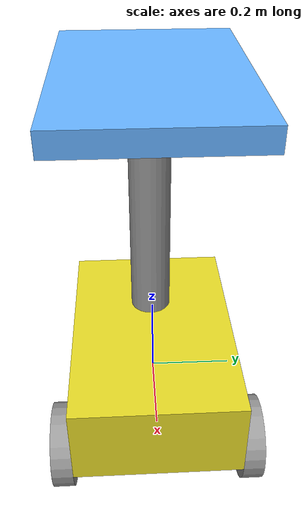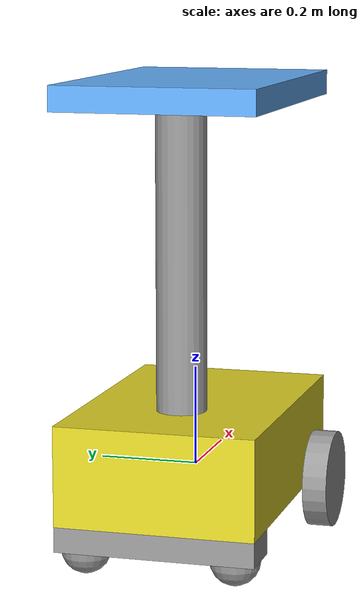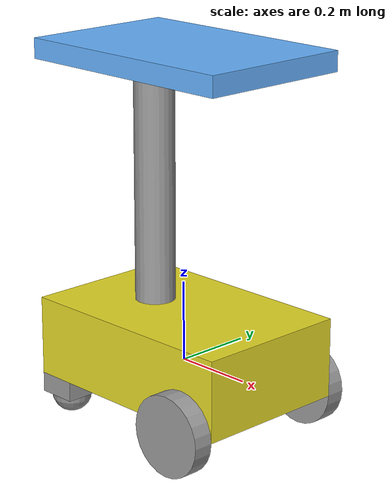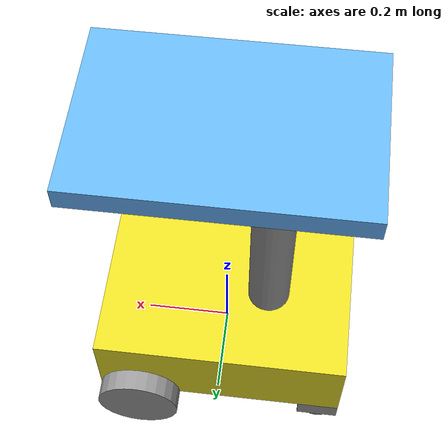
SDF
<?xml version='1.0'?>
<sdf version='1.6'>
  <model name='deliver_robot_5'>
    <link name='link_0_clone'>
      <pose frame=''>-0.002083 -0 0.033333 -0 -0 -0</pose>
      <inertial>
        <mass>1</mass>
        <inertia>
          <ixx>0.166667</ixx>
          <ixy>0</ixy>
          <ixz>0</ixz>
          <iyy>0.166667</iyy>
          <iyz>0</iyz>
          <izz>0.166667</izz>
        </inertia>
        <pose frame=''>0 0 0 0 -0 0</pose>
      </inertial>
      <self_collide>0</self_collide>
      <kinematic>0</kinematic>
      <visual name='visual'>
        <pose frame=''>0 0 0 0 -0 0</pose>
        <geometry>
          <box>
            <size>0.6 0.4 0.2</size>
          </box>
        </geometry>
        <material>
          <lighting>1</lighting>
          <script>
            <uri>file://media/materials/scripts/gazebo.material</uri>
            <name>Gazebo/Yellow</name>
          </script>
          <shader type='pixel'>
            <normal_map>__default__</normal_map>
          </shader>
          <ambient>0.2 0.8 1 1</ambient>
          <diffuse>0.4 0.7 1 1</diffuse>
          <specular>0.2 0.2 0.2 1</specular>
          <emissive>0 0 0 1</emissive>
        </material>
        <transparency>0</transparency>
        <cast_shadows>1</cast_shadows>
      </visual>
      <collision name='collision'>
        <laser_retro>0</laser_retro>
        <max_contacts>10</max_contacts>
        <pose frame=''>0 0 0 0 -0 0</pose>
        <geometry>
          <box>
            <size>0.6 0.4 0.2</size>
          </box>
        </geometry>
        <surface>
          <friction>
            <ode>
              <mu>1</mu>
              <mu2>1</mu2>
              <fdir1>0 0 0</fdir1>
              <slip1>0</slip1>
              <slip2>0</slip2>
            </ode>
            <torsional>
              <coefficient>1</coefficient>
              <patch_radius>0</patch_radius>
              <surface_radius>0</surface_radius>
              <use_patch_radius>1</use_patch_radius>
              <ode>
                <slip>0</slip>
              </ode>
            </torsional>
          </friction>
          <bounce>
            <restitution_coefficient>0</restitution_coefficient>
            <threshold>1e+06</threshold>
          </bounce>
          <contact>
            <collide_without_contact>0</collide_without_contact>
            <collide_without_contact_bitmask>1</collide_without_contact_bitmask>
            <collide_bitmask>1</collide_bitmask>
            <ode>
              <soft_cfm>0</soft_cfm>
              <soft_erp>0.2</soft_erp>
              <kp>1e+13</kp>
              <kd>1</kd>
              <max_vel>0.01</max_vel>
              <min_depth>0</min_depth>
            </ode>
            <bullet>
              <split_impulse>1</split_impulse>
              <split_impulse_penetration_threshold>-0.01</split_impulse_penetration_threshold>
              <soft_cfm>0</soft_cfm>
              <soft_erp>0.2</soft_erp>
              <kp>1e+13</kp>
              <kd>1</kd>
            </bullet>
          </contact>
        </surface>
      </collision>
    </link>
    <link name='link_1_clone'>
      <pose frame=''>0.197917 -0.22501 -0.066667 1.5707 -0 0</pose>
      <inertial>
        <mass>1</mass>
        <inertia>
          <ixx>0.145833</ixx>
          <ixy>0</ixy>
          <ixz>0</ixz>
          <iyy>0.145833</iyy>
          <iyz>0</iyz>
          <izz>0.125</izz>
        </inertia>
        <pose frame=''>0 0 0 0 -0 0</pose>
      </inertial>
      <self_collide>0</self_collide>
      <kinematic>0</kinematic>
      <visual name='visual'>
        <pose frame=''>0 0 0 0 -0 0</pose>
        <geometry>
          <cylinder>
            <radius>0.1</radius>
            <length>0.05</length>
          </cylinder>
        </geometry>
        <material>
          <lighting>1</lighting>
          <script>
            <uri>file://media/materials/scripts/gazebo.material</uri>
            <name>Gazebo/Grey</name>
          </script>
          <shader type='pixel'>
            <normal_map>__default__</normal_map>
          </shader>
          <ambient>0.3 0.3 0.3 1</ambient>
          <diffuse>0.7 0.7 0.7 1</diffuse>
          <specular>0.01 0.01 0.01 1</specular>
          <emissive>0 0 0 1</emissive>
        </material>
        <transparency>0</transparency>
        <cast_shadows>1</cast_shadows>
      </visual>
      <collision name='collision'>
        <laser_retro>0</laser_retro>
        <max_contacts>10</max_contacts>
        <pose frame=''>0 0 0 0 -0 0</pose>
        <geometry>
          <cylinder>
            <radius>0.1</radius>
            <length>0.05</length>
          </cylinder>
        </geometry>
        <surface>
          <friction>
            <ode>
              <mu>1</mu>
              <mu2>1</mu2>
              <fdir1>0 0 0</fdir1>
              <slip1>0</slip1>
              <slip2>0</slip2>
            </ode>
            <torsional>
              <coefficient>1</coefficient>
              <patch_radius>0</patch_radius>
              <surface_radius>0</surface_radius>
              <use_patch_radius>1</use_patch_radius>
              <ode>
                <slip>0</slip>
              </ode>
            </torsional>
          </friction>
          <bounce>
            <restitution_coefficient>0</restitution_coefficient>
            <threshold>1e+06</threshold>
          </bounce>
          <contact>
            <collide_without_contact>0</collide_without_contact>
            <collide_without_contact_bitmask>1</collide_without_contact_bitmask>
            <collide_bitmask>1</collide_bitmask>
            <ode>
              <soft_cfm>0</soft_cfm>
              <soft_erp>0.2</soft_erp>
              <kp>1e+13</kp>
              <kd>1</kd>
              <max_vel>0.01</max_vel>
              <min_depth>0</min_depth>
            </ode>
            <bullet>
              <split_impulse>1</split_impulse>
              <split_impulse_penetration_threshold>-0.01</split_impulse_penetration_threshold>
              <soft_cfm>0</soft_cfm>
              <soft_erp>0.2</soft_erp>
              <kp>1e+13</kp>
              <kd>1</kd>
            </bullet>
          </contact>
        </surface>
      </collision>
    </link>
    <link name='link_1_clone_0'>
      <pose frame=''>0.197917 0.22501 -0.066667 1.5707 -0 0</pose>
      <inertial>
        <mass>1</mass>
        <inertia>
          <ixx>0.145833</ixx>
          <ixy>0</ixy>
          <ixz>0</ixz>
          <iyy>0.145833</iyy>
          <iyz>0</iyz>
          <izz>0.125</izz>
        </inertia>
        <pose frame=''>0 0 0 0 -0 0</pose>
      </inertial>
      <self_collide>0</self_collide>
      <kinematic>0</kinematic>
      <visual name='visual'>
        <pose frame=''>0 0 0 0 -0 0</pose>
        <geometry>
          <cylinder>
            <radius>0.1</radius>
            <length>0.05</length>
          </cylinder>
        </geometry>
        <material>
          <lighting>1</lighting>
          <script>
            <uri>file://media/materials/scripts/gazebo.material</uri>
            <name>Gazebo/Grey</name>
          </script>
          <shader type='pixel'>
            <normal_map>__default__</normal_map>
          </shader>
          <ambient>0.3 0.3 0.3 1</ambient>
          <diffuse>0.7 0.7 0.7 1</diffuse>
          <specular>0.01 0.01 0.01 1</specular>
          <emissive>0 0 0 1</emissive>
        </material>
        <transparency>0</transparency>
        <cast_shadows>1</cast_shadows>
      </visual>
      <collision name='collision'>
        <laser_retro>0</laser_retro>
        <max_contacts>10</max_contacts>
        <pose frame=''>0 0 0 0 -0 0</pose>
        <geometry>
          <cylinder>
            <radius>0.1</radius>
            <length>0.05</length>
          </cylinder>
        </geometry>
        <surface>
          <friction>
            <ode>
              <mu>1</mu>
              <mu2>1</mu2>
              <fdir1>0 0 0</fdir1>
              <slip1>0</slip1>
              <slip2>0</slip2>
            </ode>
            <torsional>
              <coefficient>1</coefficient>
              <patch_radius>0</patch_radius>
              <surface_radius>0</surface_radius>
              <use_patch_radius>1</use_patch_radius>
              <ode>
                <slip>0</slip>
              </ode>
            </torsional>
          </friction>
          <bounce>
            <restitution_coefficient>0</restitution_coefficient>
            <threshold>1e+06</threshold>
          </bounce>
          <contact>
            <collide_without_contact>0</collide_without_contact>
            <collide_without_contact_bitmask>1</collide_without_contact_bitmask>
            <collide_bitmask>1</collide_bitmask>
            <ode>
              <soft_cfm>0</soft_cfm>
              <soft_erp>0.2</soft_erp>
              <kp>1e+13</kp>
              <kd>1</kd>
              <max_vel>0.01</max_vel>
              <min_depth>0</min_depth>
            </ode>
            <bullet>
              <split_impulse>1</split_impulse>
              <split_impulse_penetration_threshold>-0.01</split_impulse_penetration_threshold>
              <soft_cfm>0</soft_cfm>
              <soft_erp>0.2</soft_erp>
              <kp>1e+13</kp>
              <kd>1</kd>
            </bullet>
          </contact>
        </surface>
      </collision>
    </link>
    <link name='link_2_clone'>
      <pose frame=''>-0.252083 -0.15 -0.116667 -0 -0 -0</pose>
      <inertial>
        <mass>1</mass>
        <inertia>
          <ixx>0.1</ixx>
          <ixy>0</ixy>
          <ixz>0</ixz>
          <iyy>0.1</iyy>
          <iyz>0</iyz>
          <izz>0.1</izz>
        </inertia>
        <pose frame=''>0 0 0 0 -0 0</pose>
      </inertial>
      <self_collide>0</self_collide>
      <kinematic>0</kinematic>
      <visual name='visual'>
        <pose frame=''>0 0 0 0 -0 0</pose>
        <geometry>
          <sphere>
            <radius>0.05</radius>
          </sphere>
        </geometry>
        <material>
          <lighting>1</lighting>
          <script>
            <uri>file://media/materials/scripts/gazebo.material</uri>
            <name>Gazebo/Grey</name>
          </script>
          <shader type='pixel'>
            <normal_map>__default__</normal_map>
          </shader>
          <ambient>1 1 1 1</ambient>
          <diffuse>0.7 0.7 0.7 1</diffuse>
          <specular>0.01 0.01 0.01 1</specular>
          <emissive>0 0 0 1</emissive>
        </material>
        <transparency>0</transparency>
        <cast_shadows>1</cast_shadows>
      </visual>
      <collision name='collision'>
        <laser_retro>0</laser_retro>
        <max_contacts>10</max_contacts>
        <pose frame=''>0 0 0 0 -0 0</pose>
        <geometry>
          <sphere>
            <radius>0.05</radius>
          </sphere>
        </geometry>
        <surface>
          <friction>
            <ode>
              <mu>1</mu>
              <mu2>1</mu2>
              <fdir1>0 0 0</fdir1>
              <slip1>0</slip1>
              <slip2>0</slip2>
            </ode>
            <torsional>
              <coefficient>1</coefficient>
              <patch_radius>0</patch_radius>
              <surface_radius>0</surface_radius>
              <use_patch_radius>1</use_patch_radius>
              <ode>
                <slip>0</slip>
              </ode>
            </torsional>
          </friction>
          <bounce>
            <restitution_coefficient>0</restitution_coefficient>
            <threshold>1e+06</threshold>
          </bounce>
          <contact>
            <collide_without_contact>0</collide_without_contact>
            <collide_without_contact_bitmask>1</collide_without_contact_bitmask>
            <collide_bitmask>1</collide_bitmask>
            <ode>
              <soft_cfm>0</soft_cfm>
              <soft_erp>0.2</soft_erp>
              <kp>1e+13</kp>
              <kd>1</kd>
              <max_vel>0.01</max_vel>
              <min_depth>0</min_depth>
            </ode>
            <bullet>
              <split_impulse>1</split_impulse>
              <split_impulse_penetration_threshold>-0.01</split_impulse_penetration_threshold>
              <soft_cfm>0</soft_cfm>
              <soft_erp>0.2</soft_erp>
              <kp>1e+13</kp>
              <kd>1</kd>
            </bullet>
          </contact>
        </surface>
      </collision>
    </link>
    <link name='link_2_clone_0'>
      <pose frame=''>-0.252083 0.15 -0.116667 -0 -0 -0</pose>
      <inertial>
        <mass>1</mass>
        <inertia>
          <ixx>0.1</ixx>
          <ixy>0</ixy>
          <ixz>0</ixz>
          <iyy>0.1</iyy>
          <iyz>0</iyz>
          <izz>0.1</izz>
        </inertia>
        <pose frame=''>0 0 0 0 -0 0</pose>
      </inertial>
      <self_collide>0</self_collide>
      <kinematic>0</kinematic>
      <visual name='visual'>
        <pose frame=''>0 0 0 0 -0 0</pose>
        <geometry>
          <sphere>
            <radius>0.05</radius>
          </sphere>
        </geometry>
        <material>
          <lighting>1</lighting>
          <script>
            <uri>file://media/materials/scripts/gazebo.material</uri>
            <name>Gazebo/Grey</name>
          </script>
          <shader type='pixel'>
            <normal_map>__default__</normal_map>
          </shader>
          <ambient>1 1 1 1</ambient>
          <diffuse>0.7 0.7 0.7 1</diffuse>
          <specular>0.01 0.01 0.01 1</specular>
          <emissive>0 0 0 1</emissive>
        </material>
        <transparency>0</transparency>
        <cast_shadows>1</cast_shadows>
      </visual>
      <collision name='collision'>
        <laser_retro>0</laser_retro>
        <max_contacts>10</max_contacts>
        <pose frame=''>0 0 0 0 -0 0</pose>
        <geometry>
          <sphere>
            <radius>0.05</radius>
          </sphere>
        </geometry>
        <surface>
          <friction>
            <ode>
              <mu>1</mu>
              <mu2>1</mu2>
              <fdir1>0 0 0</fdir1>
              <slip1>0</slip1>
              <slip2>0</slip2>
            </ode>
            <torsional>
              <coefficient>1</coefficient>
              <patch_radius>0</patch_radius>
              <surface_radius>0</surface_radius>
              <use_patch_radius>1</use_patch_radius>
              <ode>
                <slip>0</slip>
              </ode>
            </torsional>
          </friction>
          <bounce>
            <restitution_coefficient>0</restitution_coefficient>
            <threshold>1e+06</threshold>
          </bounce>
          <contact>
            <collide_without_contact>0</collide_without_contact>
            <collide_without_contact_bitmask>1</collide_without_contact_bitmask>
            <collide_bitmask>1</collide_bitmask>
            <ode>
              <soft_cfm>0</soft_cfm>
              <soft_erp>0.2</soft_erp>
              <kp>1e+13</kp>
              <kd>1</kd>
              <max_vel>0.01</max_vel>
              <min_depth>0</min_depth>
            </ode>
            <bullet>
              <split_impulse>1</split_impulse>
              <split_impulse_penetration_threshold>-0.01</split_impulse_penetration_threshold>
              <soft_cfm>0</soft_cfm>
              <soft_erp>0.2</soft_erp>
              <kp>1e+13</kp>
              <kd>1</kd>
            </bullet>
          </contact>
        </surface>
      </collision>
    </link>
    <link name='link_3_clone'>
      <pose frame=''>-0.252083 -0 -0.091667 -0 -0 -0</pose>
      <inertial>
        <mass>1</mass>
        <inertia>
          <ixx>0.166667</ixx>
          <ixy>0</ixy>
          <ixz>0</ixz>
          <iyy>0.166667</iyy>
          <iyz>0</iyz>
          <izz>0.166667</izz>
        </inertia>
        <pose frame=''>0 0 0 0 -0 0</pose>
      </inertial>
      <self_collide>0</self_collide>
      <kinematic>0</kinematic>
      <visual name='visual'>
        <pose frame=''>0 0 0 0 -0 0</pose>
        <geometry>
          <box>
            <size>0.1 0.4 0.05</size>
          </box>
        </geometry>
        <material>
          <lighting>1</lighting>
          <script>
            <uri>file://media/materials/scripts/gazebo.material</uri>
            <name>Gazebo/Grey</name>
          </script>
          <shader type='pixel'>
            <normal_map>__default__</normal_map>
          </shader>
          <ambient>0.3 0.3 0.3 1</ambient>
          <diffuse>0.7 0.7 0.7 1</diffuse>
          <specular>0.01 0.01 0.01 1</specular>
          <emissive>0 0 0 1</emissive>
        </material>
        <transparency>0</transparency>
        <cast_shadows>1</cast_shadows>
      </visual>
      <collision name='collision'>
        <laser_retro>0</laser_retro>
        <max_contacts>10</max_contacts>
        <pose frame=''>0 0 0 0 -0 0</pose>
        <geometry>
          <box>
            <size>0.1 0.4 0.05</size>
          </box>
        </geometry>
        <surface>
          <friction>
            <ode>
              <mu>1</mu>
              <mu2>1</mu2>
              <fdir1>0 0 0</fdir1>
              <slip1>0</slip1>
              <slip2>0</slip2>
            </ode>
            <torsional>
              <coefficient>1</coefficient>
              <patch_radius>0</patch_radius>
              <surface_radius>0</surface_radius>
              <use_patch_radius>1</use_patch_radius>
              <ode>
                <slip>0</slip>
              </ode>
            </torsional>
          </friction>
          <bounce>
            <restitution_coefficient>0</restitution_coefficient>
            <threshold>1e+06</threshold>
          </bounce>
          <contact>
            <collide_without_contact>0</collide_without_contact>
            <collide_without_contact_bitmask>1</collide_without_contact_bitmask>
            <collide_bitmask>1</collide_bitmask>
            <ode>
              <soft_cfm>0</soft_cfm>
              <soft_erp>0.2</soft_erp>
              <kp>1e+13</kp>
              <kd>1</kd>
              <max_vel>0.01</max_vel>
              <min_depth>0</min_depth>
            </ode>
            <bullet>
              <split_impulse>1</split_impulse>
              <split_impulse_penetration_threshold>-0.01</split_impulse_penetration_threshold>
              <soft_cfm>0</soft_cfm>
              <soft_erp>0.2</soft_erp>
              <kp>1e+13</kp>
              <kd>1</kd>
            </bullet>
          </contact>
        </surface>
      </collision>
    </link>
    <link name='link_4_clone'>
      <pose frame=''>-0.002083 -0 0.758333 -0 -0 -0</pose>
      <inertial>
        <mass>1</mass>
        <inertia>
          <ixx>0.166667</ixx>
          <ixy>0</ixy>
          <ixz>0</ixz>
          <iyy>0.166667</iyy>
          <iyz>0</iyz>
          <izz>0.166667</izz>
        </inertia>
        <pose frame=''>0 0 0 0 -0 0</pose>
      </inertial>
      <self_collide>0</self_collide>
      <kinematic>0</kinematic>
      <visual name='visual'>
        <pose frame=''>0 0 0 0 -0 0</pose>
        <geometry>
          <box>
            <size>0.6 0.4 0.05</size>
          </box>
        </geometry>
        <material>
          <lighting>1</lighting>
          <script>
            <uri>file://media/materials/scripts/gazebo.material</uri>
            <name>Gazebo/Grey</name>
          </script>
          <shader type='pixel'>
            <normal_map>__default__</normal_map>
          </shader>
          <ambient>0.2 0.8 1 1</ambient>
          <diffuse>0.4 0.7 1 1</diffuse>
          <specular>0.2 0.2 0.2 1</specular>
          <emissive>0 0 0 1</emissive>
        </material>
        <transparency>0</transparency>
        <cast_shadows>1</cast_shadows>
      </visual>
      <collision name='collision'>
        <laser_retro>0</laser_retro>
        <max_contacts>10</max_contacts>
        <pose frame=''>0 0 0 0 -0 0</pose>
        <geometry>
          <box>
            <size>0.6 0.4 0.05</size>
          </box>
        </geometry>
        <surface>
          <friction>
            <ode>
              <mu>1</mu>
              <mu2>1</mu2>
              <fdir1>0 0 0</fdir1>
              <slip1>0</slip1>
              <slip2>0</slip2>
            </ode>
            <torsional>
              <coefficient>1</coefficient>
              <patch_radius>0</patch_radius>
              <surface_radius>0</surface_radius>
              <use_patch_radius>1</use_patch_radius>
              <ode>
                <slip>0</slip>
              </ode>
            </torsional>
          </friction>
          <bounce>
            <restitution_coefficient>0</restitution_coefficient>
            <threshold>1e+06</threshold>
          </bounce>
          <contact>
            <collide_without_contact>0</collide_without_contact>
            <collide_without_contact_bitmask>1</collide_without_contact_bitmask>
            <collide_bitmask>1</collide_bitmask>
            <ode>
              <soft_cfm>0</soft_cfm>
              <soft_erp>0.2</soft_erp>
              <kp>1e+13</kp>
              <kd>1</kd>
              <max_vel>0.01</max_vel>
              <min_depth>0</min_depth>
            </ode>
            <bullet>
              <split_impulse>1</split_impulse>
              <split_impulse_penetration_threshold>-0.01</split_impulse_penetration_threshold>
              <soft_cfm>0</soft_cfm>
              <soft_erp>0.2</soft_erp>
              <kp>1e+13</kp>
              <kd>1</kd>
            </bullet>
          </contact>
        </surface>
      </collision>
    </link>
    <link name='link_5_clone'>
      <pose frame=''>-0.102083 -0 0.433333 -0 -0 -0</pose>
      <inertial>
        <mass>1</mass>
        <inertia>
          <ixx>0.145833</ixx>
          <ixy>0</ixy>
          <ixz>0</ixz>
          <iyy>0.145833</iyy>
          <iyz>0</iyz>
          <izz>0.125</izz>
        </inertia>
        <pose frame=''>0 0 0 0 -0 0</pose>
      </inertial>
      <self_collide>0</self_collide>
      <kinematic>0</kinematic>
      <visual name='visual'>
        <pose frame=''>0 0 0 0 -0 0</pose>
        <geometry>
          <cylinder>
            <radius>0.05</radius>
            <length>0.6</length>
          </cylinder>
        </geometry>
        <material>
          <lighting>1</lighting>
          <script>
            <uri>file://media/materials/scripts/gazebo.material</uri>
            <name>Gazebo/Grey</name>
          </script>
          <shader type='pixel'>
            <normal_map>__default__</normal_map>
          </shader>
          <ambient>0 0 0 1</ambient>
          <diffuse>0.7 0.7 0.7 1</diffuse>
          <specular>0.01 0.01 0.01 1</specular>
          <emissive>0 0 0 1</emissive>
        </material>
        <transparency>0</transparency>
        <cast_shadows>1</cast_shadows>
      </visual>
      <collision name='collision'>
        <laser_retro>0</laser_retro>
        <max_contacts>10</max_contacts>
        <pose frame=''>0 0 0 0 -0 0</pose>
        <geometry>
          <cylinder>
            <radius>0.05</radius>
            <length>0.6</length>
          </cylinder>
        </geometry>
        <surface>
          <friction>
            <ode>
              <mu>1</mu>
              <mu2>1</mu2>
              <fdir1>0 0 0</fdir1>
              <slip1>0</slip1>
              <slip2>0</slip2>
            </ode>
            <torsional>
              <coefficient>1</coefficient>
              <patch_radius>0</patch_radius>
              <surface_radius>0</surface_radius>
              <use_patch_radius>1</use_patch_radius>
              <ode>
                <slip>0</slip>
              </ode>
            </torsional>
          </friction>
          <bounce>
            <restitution_coefficient>0</restitution_coefficient>
            <threshold>1e+06</threshold>
          </bounce>
          <contact>
            <collide_without_contact>0</collide_without_contact>
            <collide_without_contact_bitmask>1</collide_without_contact_bitmask>
            <collide_bitmask>1</collide_bitmask>
            <ode>
              <soft_cfm>0</soft_cfm>
              <soft_erp>0.2</soft_erp>
              <kp>1e+13</kp>
              <kd>1</kd>
              <max_vel>0.01</max_vel>
              <min_depth>0</min_depth>
            </ode>
            <bullet>
              <split_impulse>1</split_impulse>
              <split_impulse_penetration_threshold>-0.01</split_impulse_penetration_threshold>
              <soft_cfm>0</soft_cfm>
              <soft_erp>0.2</soft_erp>
              <kp>1e+13</kp>
              <kd>1</kd>
            </bullet>
          </contact>
        </surface>
      </collision>
    </link>
    <joint name='link_0_clone_JOINT_0' type='revolute'>
      <parent>link_0_clone</parent>
      <child>link_1_clone_0</child>
      <pose frame=''>0 0 0 0 -0 0</pose>
      <axis>
        <xyz>0 0 1</xyz>
        <use_parent_model_frame>0</use_parent_model_frame>
        <limit>
          <lower>-1.79769e+308</lower>
          <upper>1.79769e+308</upper>
          <effort>-1</effort>
          <velocity>-1</velocity>
        </limit>
        <dynamics>
          <spring_reference>0</spring_reference>
          <spring_stiffness>0</spring_stiffness>
          <damping>0</damping>
          <friction>0</friction>
        </dynamics>
      </axis>
      <physics>
        <ode>
          <limit>
            <cfm>0</cfm>
            <erp>0.2</erp>
          </limit>
          <suspension>
            <cfm>0</cfm>
            <erp>0.2</erp>
          </suspension>
        </ode>
      </physics>
    </joint>
    <joint name='link_0_clone_JOINT_1' type='revolute'>
      <parent>link_0_clone</parent>
      <child>link_1_clone</child>
      <pose frame=''>0 0 0 0 -0 0</pose>
      <axis>
        <xyz>0 0 1</xyz>
        <use_parent_model_frame>0</use_parent_model_frame>
        <limit>
          <lower>-1.79769e+308</lower>
          <upper>1.79769e+308</upper>
          <effort>-1</effort>
          <velocity>-1</velocity>
        </limit>
        <dynamics>
          <spring_reference>0</spring_reference>
          <spring_stiffness>0</spring_stiffness>
          <damping>0</damping>
          <friction>0</friction>
        </dynamics>
      </axis>
      <physics>
        <ode>
          <limit>
            <cfm>0</cfm>
            <erp>0.2</erp>
          </limit>
          <suspension>
            <cfm>0</cfm>
            <erp>0.2</erp>
          </suspension>
        </ode>
      </physics>
    </joint>
    <joint name='link_0_clone_JOINT_5' type='fixed'>
      <parent>link_0_clone</parent>
      <child>link_3_clone</child>
      <pose frame=''>0 0 0 0 -0 0</pose>
      <physics>
        <ode>
          <limit>
            <cfm>0</cfm>
            <erp>0.2</erp>
          </limit>
          <suspension>
            <cfm>0</cfm>
            <erp>0.2</erp>
          </suspension>
        </ode>
      </physics>
    </joint>
    <joint name='link_0_clone_JOINT_8' type='revolute'>
      <parent>link_0_clone</parent>
      <child>link_5_clone</child>
      <pose frame=''>0 0 0 0 -0 0</pose>
      <axis>
        <xyz>0 0 1</xyz>
        <use_parent_model_frame>0</use_parent_model_frame>
        <limit>
          <lower>-1.79769e+308</lower>
          <upper>1.79769e+308</upper>
          <effort>-1</effort>
          <velocity>-1</velocity>
        </limit>
        <dynamics>
          <spring_reference>0</spring_reference>
          <spring_stiffness>0</spring_stiffness>
          <damping>0</damping>
          <friction>0</friction>
        </dynamics>
      </axis>
      <physics>
        <ode>
          <limit>
            <cfm>0</cfm>
            <erp>0.2</erp>
          </limit>
          <suspension>
            <cfm>0</cfm>
            <erp>0.2</erp>
          </suspension>
        </ode>
      </physics>
    </joint>
    <joint name='link_3_clone_JOINT_6' type='ball'>
      <parent>link_3_clone</parent>
      <child>link_2_clone</child>
      <pose frame=''>0 0 0 0 -0 0</pose>
      <physics>
        <ode>
          <limit>
            <cfm>0</cfm>
            <erp>0.2</erp>
          </limit>
          <suspension>
            <cfm>0</cfm>
            <erp>0.2</erp>
          </suspension>
        </ode>
      </physics>
    </joint>
    <joint name='link_3_clone_JOINT_7' type='revolute'>
      <parent>link_3_clone</parent>
      <child>link_2_clone_0</child>
      <pose frame=''>0 0 0 0 -0 0</pose>
      <axis>
        <xyz>1 0 0</xyz>
        <use_parent_model_frame>0</use_parent_model_frame>
        <limit>
          <lower>-1.79769e+308</lower>
          <upper>1.79769e+308</upper>
          <effort>-1</effort>
          <velocity>-1</velocity>
        </limit>
        <dynamics>
          <spring_reference>0</spring_reference>
          <spring_stiffness>0</spring_stiffness>
          <damping>0</damping>
          <friction>0</friction>
        </dynamics>
      </axis>
      <physics>
        <ode>
          <limit>
            <cfm>0</cfm>
            <erp>0.2</erp>
          </limit>
          <suspension>
            <cfm>0</cfm>
            <erp>0.2</erp>
          </suspension>
        </ode>
      </physics>
    </joint>
    <joint name='link_5_clone_JOINT_9' type='fixed'>
      <parent>link_5_clone</parent>
      <child>link_4_clone</child>
      <pose frame=''>0 0 0 0 -0 0</pose>
      <physics>
        <ode>
          <limit>
            <cfm>0</cfm>
            <erp>0.2</erp>
          </limit>
          <suspension>
            <cfm>0</cfm>
            <erp>0.2</erp>
          </suspension>
        </ode>
      </physics>
    </joint>
    <static>0</static>
    <allow_auto_disable>1</allow_auto_disable>
  </model>
</sdf>
